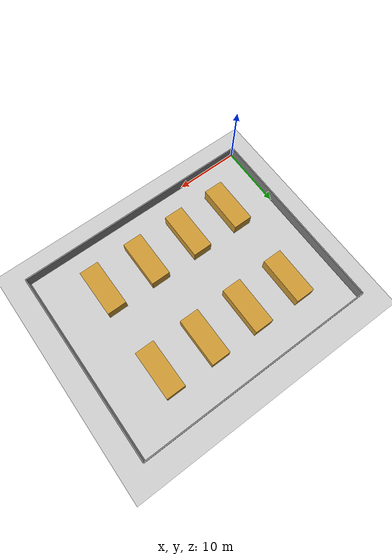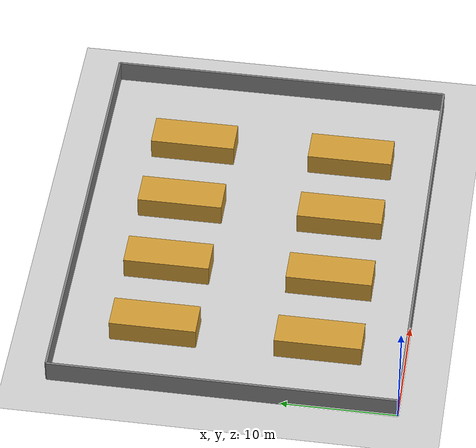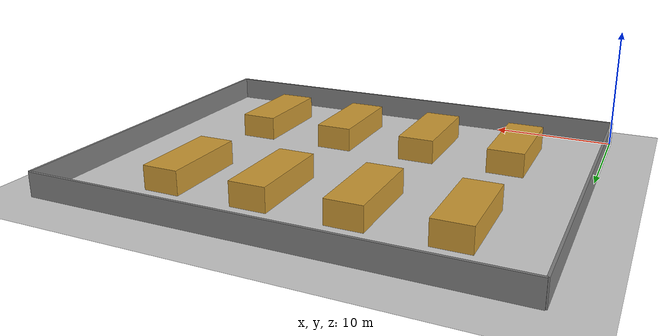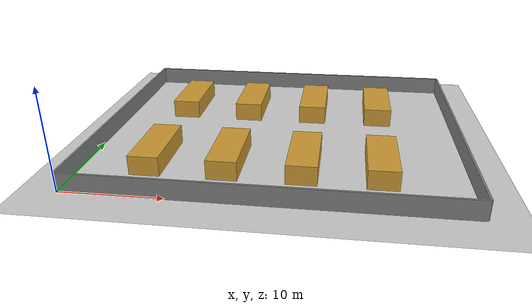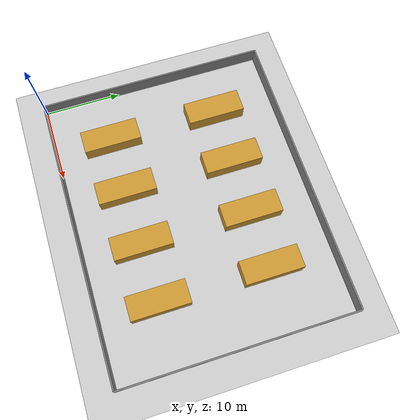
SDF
<?xml version="1.0" ?>
<sdf version="1.6">
  <world name="warehouse">
    <!-- Physics -->
    <physics type="ode">
      <max_step_size>0.001</max_step_size>
      <real_time_factor>1</real_time_factor>
    </physics>

    <!-- Lighting -->
    <include>
      <uri>model://sun</uri>
    </include>

    <!-- Ground plane -->
    <include>
      <uri>model://ground_plane</uri>
    </include>

    <!-- Warehouse walls (37.5m x 30m at 1.5m/cell resolution, 25x20 grid) -->
    <!-- North wall -->
    <model name="wall_north">
      <static>true</static>
      <pose>18.75 30 1 0 0 0</pose>
      <link name="link">
        <collision name="collision">
          <geometry><box><size>37.5 0.2 2</size></box></geometry>
        </collision>
        <visual name="visual">
          <geometry><box><size>37.5 0.2 2</size></box></geometry>
          <material><ambient>0.5 0.5 0.5 1</ambient></material>
        </visual>
      </link>
    </model>

    <!-- South wall -->
    <model name="wall_south">
      <static>true</static>
      <pose>18.75 0 1 0 0 0</pose>
      <link name="link">
        <collision name="collision">
          <geometry><box><size>37.5 0.2 2</size></box></geometry>
        </collision>
        <visual name="visual">
          <geometry><box><size>37.5 0.2 2</size></box></geometry>
          <material><ambient>0.5 0.5 0.5 1</ambient></material>
        </visual>
      </link>
    </model>

    <!-- West wall -->
    <model name="wall_west">
      <static>true</static>
      <pose>0 15 1 0 0 0</pose>
      <link name="link">
        <collision name="collision">
          <geometry><box><size>0.2 30 2</size></box></geometry>
        </collision>
        <visual name="visual">
          <geometry><box><size>0.2 30 2</size></box></geometry>
          <material><ambient>0.5 0.5 0.5 1</ambient></material>
        </visual>
      </link>
    </model>

    <!-- East wall -->
    <model name="wall_east">
      <static>true</static>
      <pose>37.5 15 1 0 0 0</pose>
      <link name="link">
        <collision name="collision">
          <geometry><box><size>0.2 30 2</size></box></geometry>
        </collision>
        <visual name="visual">
          <geometry><box><size>0.2 30 2</size></box></geometry>
          <material><ambient>0.5 0.5 0.5 1</ambient></material>
        </visual>
      </link>
    </model>

    <!-- Shelf Row 1 (bottom): columns at x=6,7.5 / 13.5,15 / 21,22.5 / 28.5,30 -->
    <!-- y range: 4.5 to 10.5 (cells 3-7, each 1.5m) -->
    <model name="shelf_1a">
      <static>true</static>
      <pose>6.75 7.5 1 0 0 0</pose>
      <link name="link">
        <collision name="collision">
          <geometry><box><size>3 7.5 2</size></box></geometry>
        </collision>
        <visual name="visual">
          <geometry><box><size>3 7.5 2</size></box></geometry>
          <material><ambient>0.8 0.6 0.2 1</ambient></material>
        </visual>
      </link>
    </model>

    <model name="shelf_1b">
      <static>true</static>
      <pose>14.25 7.5 1 0 0 0</pose>
      <link name="link">
        <collision name="collision">
          <geometry><box><size>3 7.5 2</size></box></geometry>
        </collision>
        <visual name="visual">
          <geometry><box><size>3 7.5 2</size></box></geometry>
          <material><ambient>0.8 0.6 0.2 1</ambient></material>
        </visual>
      </link>
    </model>

    <model name="shelf_1c">
      <static>true</static>
      <pose>21.75 7.5 1 0 0 0</pose>
      <link name="link">
        <collision name="collision">
          <geometry><box><size>3 7.5 2</size></box></geometry>
        </collision>
        <visual name="visual">
          <geometry><box><size>3 7.5 2</size></box></geometry>
          <material><ambient>0.8 0.6 0.2 1</ambient></material>
        </visual>
      </link>
    </model>

    <model name="shelf_1d">
      <static>true</static>
      <pose>29.25 7.5 1 0 0 0</pose>
      <link name="link">
        <collision name="collision">
          <geometry><box><size>3 7.5 2</size></box></geometry>
        </collision>
        <visual name="visual">
          <geometry><box><size>3 7.5 2</size></box></geometry>
          <material><ambient>0.8 0.6 0.2 1</ambient></material>
        </visual>
      </link>
    </model>

    <!-- Shelf Row 2 (top): same x positions, y range: 18 to 25.5 (cells 12-17) -->
    <model name="shelf_2a">
      <static>true</static>
      <pose>6.75 21.75 1 0 0 0</pose>
      <link name="link">
        <collision name="collision">
          <geometry><box><size>3 7.5 2</size></box></geometry>
        </collision>
        <visual name="visual">
          <geometry><box><size>3 7.5 2</size></box></geometry>
          <material><ambient>0.8 0.6 0.2 1</ambient></material>
        </visual>
      </link>
    </model>

    <model name="shelf_2b">
      <static>true</static>
      <pose>14.25 21.75 1 0 0 0</pose>
      <link name="link">
        <collision name="collision">
          <geometry><box><size>3 7.5 2</size></box></geometry>
        </collision>
        <visual name="visual">
          <geometry><box><size>3 7.5 2</size></box></geometry>
          <material><ambient>0.8 0.6 0.2 1</ambient></material>
        </visual>
      </link>
    </model>

    <model name="shelf_2c">
      <static>true</static>
      <pose>21.75 21.75 1 0 0 0</pose>
      <link name="link">
        <collision name="collision">
          <geometry><box><size>3 7.5 2</size></box></geometry>
        </collision>
        <visual name="visual">
          <geometry><box><size>3 7.5 2</size></box></geometry>
          <material><ambient>0.8 0.6 0.2 1</ambient></material>
        </visual>
      </link>
    </model>

    <model name="shelf_2d">
      <static>true</static>
      <pose>29.25 21.75 1 0 0 0</pose>
      <link name="link">
        <collision name="collision">
          <geometry><box><size>3 7.5 2</size></box></geometry>
        </collision>
        <visual name="visual">
          <geometry><box><size>3 7.5 2</size></box></geometry>
          <material><ambient>0.8 0.6 0.2 1</ambient></material>
        </visual>
      </link>
    </model>

  </world>
</sdf>
